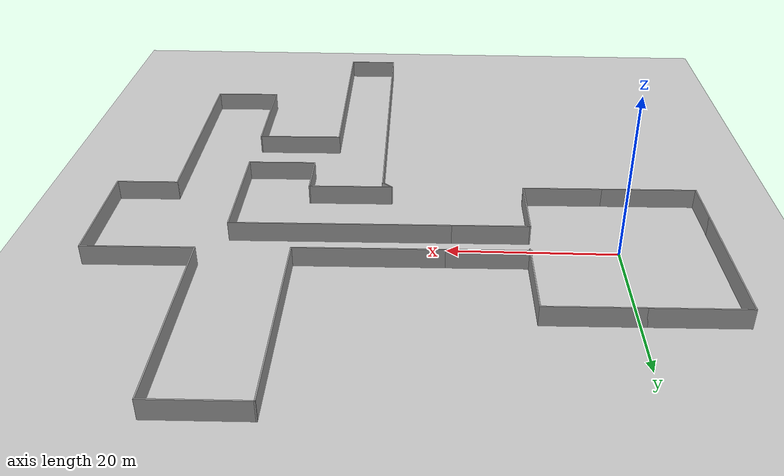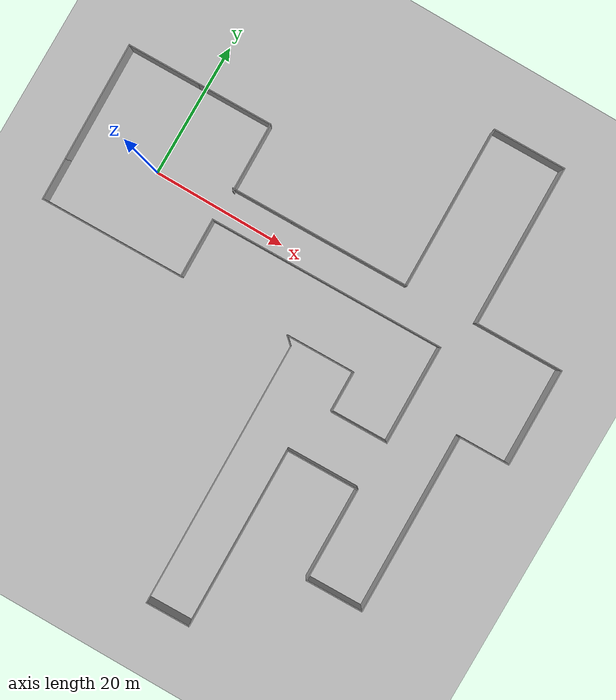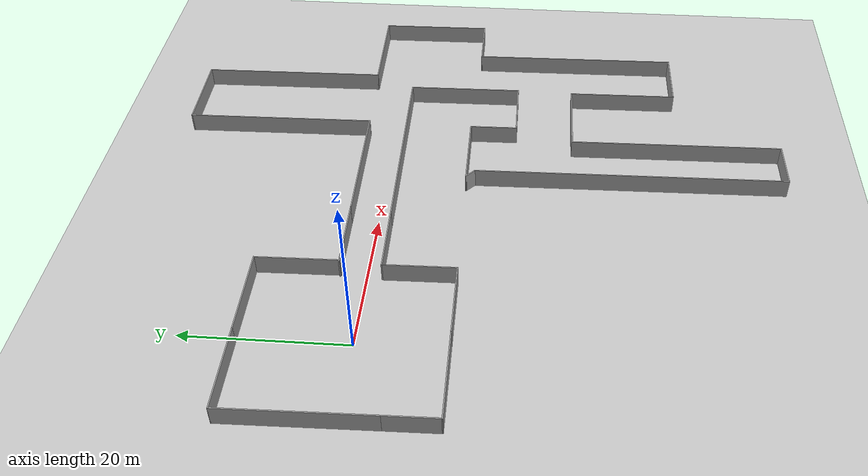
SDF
<sdf version="1.6">
 <world name="default">
  <light name="sun" type="directional">
   <pose>0 0 10 0 -0 0</pose>
   <diffuse>0.8 0.8 0.8 1</diffuse>
   <specular>0.2 0.2 0.2 1</specular>
   <attenuation>
    <range>1000</range>
    <constant>0.9</constant>
    <linear>0.01</linear>
    <quadratic>0.001</quadratic>
   </attenuation>
   <direction>-0.5 0.1 -0.9</direction>
  </light>
  <model name="ground_plane">
   <static>1</static>
   <link name="link">
    <collision name="collision">
     <geometry><plane><normal>0 0 1</normal><size>100 100</size></plane></geometry>
     <surface>
      <contact><collide_bitmask>65535</collide_bitmask></contact>
      <friction><ode><mu>100</mu><mu2>50</mu2></ode></friction>
     </surface>
    </collision>
    <visual name="visual">
     <cast_shadows>0</cast_shadows>
     <geometry><plane><normal>0 0 1</normal><size>100 100</size></plane></geometry>
     <material>
      <script><uri>file://media/materials/scripts/gazebo.material</uri><name>Gazebo/Grey</name></script>
     </material>
    </visual>
   </link>
  </model>
  <gravity>0 0 -9.8</gravity>
  <magnetic_field>6e-06 2.3e-05 -4.2e-05</magnetic_field>
  <atmosphere type="adiabatic"/>
  <physics name="default_physics" default="0" type="ode">
   <max_step_size>0.001</max_step_size>
   <real_time_factor>1</real_time_factor>
   <real_time_update_rate>1000</real_time_update_rate>
  </physics>
  <scene><ambient>0.4 0.4 0.4 1</ambient><background>0.7 0.7 0.7 1</background><shadows>1</shadows></scene>
  <audio><device>default</device></audio>
  <spherical_coordinates>
   <surface_model>EARTH_WGS84</surface_model>
   <latitude_deg>0</latitude_deg>
   <longitude_deg>0</longitude_deg>
   <elevation>0</elevation>
   <heading_deg>0</heading_deg>
  </spherical_coordinates>
  <model name="mycave">
   <pose>25.3756 -11.725 0 0 0 -1.55411</pose>
   <link name="Wall_1">
    <collision name="Wall_1_Collision">
     <geometry><box><size>11 0.15 2.5</size></box></geometry>
     <pose>0 0 1.25 0 -0 0</pose>
    </collision>
    <visual name="Wall_1_Visual">
     <pose>0 0 1.25 0 -0 0</pose>
     <geometry><box><size>11 0.15 2.5</size></box></geometry>
     <material>
      <script><uri>file://media/materials/scripts/gazebo.material</uri><name>Gazebo/Grey</name></script>
      <ambient>1 1 1 1</ambient>
     </material>
     <meta><layer>0</layer></meta>
    </visual>
    <pose>-25.2512 -30.9535 0 0 -0 -1.5708</pose>
   </link>
   <link name="Wall_10">
    <collision name="Wall_10_Collision">
     <geometry><box><size>9 0.15 2.5</size></box></geometry>
     <pose>0 0 1.25 0 -0 0</pose>
    </collision>
    <visual name="Wall_10_Visual">
     <pose>0 0 1.25 0 -0 0</pose>
     <geometry><box><size>9 0.15 2.5</size></box></geometry>
     <material>
      <script><uri>file://media/materials/scripts/gazebo.material</uri><name>Gazebo/Grey</name></script>
      <ambient>1 1 1 1</ambient>
     </material>
     <meta><layer>0</layer></meta>
    </visual>
    <pose>-5.72623 -14.9285 0 0 -0 3.14159</pose>
   </link>
   <link name="Wall_11">
    <collision name="Wall_11_Collision">
     <geometry><box><size>9.25 0.15 2.5</size></box></geometry>
     <pose>0 0 1.25 0 -0 0</pose>
    </collision>
    <visual name="Wall_11_Visual">
     <pose>0 0 1.25 0 -0 0</pose>
     <geometry><box><size>9.25 0.15 2.5</size></box></geometry>
     <material>
      <script><uri>file://media/materials/scripts/gazebo.material</uri><name>Gazebo/Grey</name></script>
      <ambient>1 1 1 1</ambient>
     </material>
     <meta><layer>0</layer></meta>
    </visual>
    <pose>-10.1512 -10.3785 0 0 -0 1.5708</pose>
   </link>
   <link name="Wall_13">
    <collision name="Wall_13_Collision">
     <geometry><box><size>9.75 0.15 2.5</size></box></geometry>
     <pose>0 0 1.25 0 -0 0</pose>
    </collision>
    <visual name="Wall_13_Visual">
     <pose>0 0 1.25 0 -0 0</pose>
     <geometry><box><size>9.75 0.15 2.5</size></box></geometry>
     <material>
      <script><uri>file://media/materials/scripts/gazebo.material</uri><name>Gazebo/Grey</name></script>
      <ambient>1 1 1 1</ambient>
     </material>
     <meta><layer>0</layer></meta>
    </visual>
    <pose>-15.1863 -9.81726 0 0 -0 1.5708</pose>
   </link>
   <link name="Wall_15">
    <collision name="Wall_15_Collision">
     <geometry><box><size>18 0.15 2.5</size></box></geometry>
     <pose>0 0 1.25 0 -0 0</pose>
    </collision>
    <visual name="Wall_15_Visual">
     <pose>0 0 1.25 0 -0 0</pose>
     <geometry><box><size>18 0.15 2.5</size></box></geometry>
     <material>
      <script><uri>file://media/materials/scripts/gazebo.material</uri><name>Gazebo/Grey</name></script>
      <ambient>1 1 1 1</ambient>
     </material>
     <meta><layer>0</layer></meta>
    </visual>
    <pose>-15.175 3.50349 0 0 -0 1.5708</pose>
   </link>
   <link name="Wall_16">
    <collision name="Wall_16_Collision">
     <geometry><box><size>24.5 0.15 2.5</size></box></geometry>
     <pose>0 0 1.25 0 -0 0</pose>
    </collision>
    <visual name="Wall_16_Visual">
     <pose>0 0 1.25 0 -0 0</pose>
     <geometry><box><size>24.5 0.15 2.5</size></box></geometry>
     <material>
      <script><uri>file://media/materials/scripts/gazebo.material</uri><name>Gazebo/Grey</name></script>
      <ambient>1 1 1 1</ambient>
     </material>
     <meta><layer>0</layer></meta>
    </visual>
    <pose>-27.35 12.4285 0 0 -0 3.14159</pose>
   </link>
   <link name="Wall_17">
    <collision name="Wall_17_Collision">
     <geometry><box><size>11 0.15 2.5</size></box></geometry>
     <pose>0 0 1.25 0 -0 0</pose>
    </collision>
    <visual name="Wall_17_Visual">
     <pose>0 0 1.25 0 -0 0</pose>
     <geometry><box><size>11 0.15 2.5</size></box></geometry>
     <material>
      <script><uri>file://media/materials/scripts/gazebo.material</uri><name>Gazebo/Grey</name></script>
      <ambient>1 1 1 1</ambient>
     </material>
     <meta><layer>0</layer></meta>
    </visual>
    <pose>-39.525 17.8535 0 0 -0 1.5708</pose>
   </link>
   <link name="Wall_18">
    <collision name="Wall_18_Collision">
     <geometry><box><size>24.25 0.15 2.5</size></box></geometry>
     <pose>0 0 1.25 0 -0 0</pose>
    </collision>
    <visual name="Wall_18_Visual">
     <pose>0 0 1.25 0 -0 0</pose>
     <geometry><box><size>24.25 0.15 2.5</size></box></geometry>
     <material>
      <script><uri>file://media/materials/scripts/gazebo.material</uri><name>Gazebo/Grey</name></script>
      <ambient>1 1 1 1</ambient>
     </material>
     <meta><layer>0</layer></meta>
    </visual>
    <pose>-27.475 23.2785 0 0 -0 0</pose>
   </link>
   <link name="Wall_19">
    <collision name="Wall_19_Collision">
     <geometry><box><size>13.25 0.15 2.5</size></box></geometry>
     <pose>0 0 1.25 0 -0 0</pose>
    </collision>
    <visual name="Wall_19_Visual">
     <pose>0 0 1.25 0 -0 0</pose>
     <geometry><box><size>13.25 0.15 2.5</size></box></geometry>
     <material>
      <script><uri>file://media/materials/scripts/gazebo.material</uri><name>Gazebo/Grey</name></script>
      <ambient>1 1 1 1</ambient>
     </material>
     <meta><layer>0</layer></meta>
    </visual>
    <pose>-15.425 29.8285 0 0 -0 1.5708</pose>
   </link>
   <link name="Wall_2">
    <collision name="Wall_2_Collision">
     <geometry><box><size>17.75 0.15 2.5</size></box></geometry>
     <pose>0 0 1.25 0 -0 0</pose>
    </collision>
    <visual name="Wall_2_Visual">
     <pose>0 0 1.25 0 -0 0</pose>
     <geometry><box><size>17.75 0.15 2.5</size></box></geometry>
     <material>
      <script><uri>file://media/materials/scripts/gazebo.material</uri><name>Gazebo/Grey</name></script>
      <ambient>1 1 1 1</ambient>
     </material>
     <meta><layer>0</layer></meta>
    </visual>
    <pose>-16.4512 -36.3785 0 0 -0 0</pose>
   </link>
   <link name="Wall_20">
    <collision name="Wall_20_Collision">
     <geometry><box><size>14.75 0.15 2.5</size></box></geometry>
     <pose>0 0 1.25 0 -0 0</pose>
    </collision>
    <visual name="Wall_20_Visual">
     <pose>0 0 1.25 0 -0 0</pose>
     <geometry><box><size>14.75 0.15 2.5</size></box></geometry>
     <material>
      <script><uri>file://media/materials/scripts/gazebo.material</uri><name>Gazebo/Grey</name></script>
      <ambient>1 1 1 1</ambient>
     </material>
     <meta><layer>0</layer></meta>
    </visual>
    <pose>-8.125 36.3785 0 0 -0 0</pose>
   </link>
   <link name="Wall_21">
    <collision name="Wall_21_Collision">
     <geometry><box><size>7.75 0.15 2.5</size></box></geometry>
     <pose>0 0 1.25 0 -0 0</pose>
    </collision>
    <visual name="Wall_21_Visual">
     <pose>0 0 1.25 0 -0 0</pose>
     <geometry><box><size>7.75 0.15 2.5</size></box></geometry>
     <material>
      <script><uri>file://media/materials/scripts/gazebo.material</uri><name>Gazebo/Grey</name></script>
      <ambient>1 1 1 1</ambient>
     </material>
     <meta><layer>0</layer></meta>
    </visual>
    <pose>-0.825001 32.5785 0 0 -0 -1.5708</pose>
   </link>
   <link name="Wall_22">
    <collision name="Wall_22_Collision">
     <geometry><box><size>27.25 0.15 2.5</size></box></geometry>
     <pose>0 0 1.25 0 -0 0</pose>
    </collision>
    <visual name="Wall_22_Visual">
     <pose>0 0 1.25 0 -0 0</pose>
     <geometry><box><size>27.25 0.15 2.5</size></box></geometry>
     <material>
      <script><uri>file://media/materials/scripts/gazebo.material</uri><name>Gazebo/Grey</name></script>
      <ambient>1 1 1 1</ambient>
     </material>
     <meta><layer>0</layer></meta>
    </visual>
    <pose>12.725 28.7785 0 0 -0 0</pose>
   </link>
   <link name="Wall_23">
    <collision name="Wall_23_Collision">
     <geometry><box><size>8.75 0.15 2.5</size></box></geometry>
     <pose>0 0 1.25 0 -0 0</pose>
    </collision>
    <visual name="Wall_23_Visual">
     <pose>0 0 1.25 0 -0 0</pose>
     <geometry><box><size>8.75 0.15 2.5</size></box></geometry>
     <material>
      <script><uri>file://media/materials/scripts/gazebo.material</uri><name>Gazebo/Grey</name></script>
      <ambient>1 1 1 1</ambient>
     </material>
     <meta><layer>0</layer></meta>
    </visual>
    <pose>26.275 24.4785 0 0 -0 -1.5708</pose>
   </link>
   <link name="Wall_24">
    <collision name="Wall_24_Collision">
     <geometry><box><size>14.25 0.15 2.5</size></box></geometry>
     <pose>0 0 1.25 0 -0 0</pose>
    </collision>
    <visual name="Wall_24_Visual">
     <pose>0 0 1.25 0 -0 0</pose>
     <geometry><box><size>14.25 0.15 2.5</size></box></geometry>
     <material>
      <script><uri>file://media/materials/scripts/gazebo.material</uri><name>Gazebo/Grey</name></script>
      <ambient>1 1 1 1</ambient>
     </material>
     <meta><layer>0</layer></meta>
    </visual>
    <pose>19.225 20.1785 0 0 -0 3.14159</pose>
   </link>
   <link name="Wall_25">
    <collision name="Wall_25_Collision">
     <geometry><box><size>11 0.15 2.5</size></box></geometry>
     <pose>0 0 1.25 0 -0 0</pose>
    </collision>
    <visual name="Wall_25_Visual">
     <pose>0 0 1.25 0 -0 0</pose>
     <geometry><box><size>11 0.15 2.5</size></box></geometry>
     <material>
      <script><uri>file://media/materials/scripts/gazebo.material</uri><name>Gazebo/Grey</name></script>
      <ambient>1 1 1 1</ambient>
     </material>
     <meta><layer>0</layer></meta>
    </visual>
    <pose>12.175 14.7535 0 0 -0 -1.5708</pose>
   </link>
   <link name="Wall_26">
    <collision name="Wall_26_Collision">
     <geometry><box><size>27.5 0.15 2.5</size></box></geometry>
     <pose>0 0 1.25 0 -0 0</pose>
    </collision>
    <visual name="Wall_26_Visual">
     <pose>0 0 1.25 0 -0 0</pose>
     <geometry><box><size>27.5 0.15 2.5</size></box></geometry>
     <material>
      <script><uri>file://media/materials/scripts/gazebo.material</uri><name>Gazebo/Grey</name></script>
      <ambient>1 1 1 1</ambient>
     </material>
     <meta><layer>0</layer></meta>
    </visual>
    <pose>25.85 9.32849 0 0 -0 0</pose>
   </link>
   <link name="Wall_27">
    <collision name="Wall_27_Collision">
     <geometry><box><size>6.75 0.15 2.5</size></box></geometry>
     <pose>0 0 1.25 0 -0 0</pose>
    </collision>
    <visual name="Wall_27_Visual">
     <pose>0 0 1.25 0 -0 0</pose>
     <geometry><box><size>6.75 0.15 2.5</size></box></geometry>
     <material>
      <script><uri>file://media/materials/scripts/gazebo.material</uri><name>Gazebo/Grey</name></script>
      <ambient>1 1 1 1</ambient>
     </material>
     <meta><layer>0</layer></meta>
    </visual>
    <pose>39.525 6.02849 0 0 -0 -1.5708</pose>
   </link>
   <link name="Wall_28">
    <collision name="Wall_28_Collision">
     <geometry><box><size>40 0.15 2.5</size></box></geometry>
     <pose>0 0 1.25 0 -0 0</pose>
    </collision>
    <visual name="Wall_28_Visual">
     <pose>0 0 1.25 0 -0 0</pose>
     <geometry><box><size>40 0.15 2.5</size></box></geometry>
     <material>
      <script><uri>file://media/materials/scripts/gazebo.material</uri><name>Gazebo/Grey</name></script>
      <ambient>1 1 1 1</ambient>
     </material>
     <meta><layer>0</layer></meta>
    </visual>
    <pose>19.6 2.72849 0 0 -0 3.14159</pose>
   </link>
   <link name="Wall_3">
    <collision name="Wall_3_Collision">
     <geometry><box><size>6.5 0.15 2.5</size></box></geometry>
     <pose>0 0 1.25 0 -0 0</pose>
    </collision>
    <visual name="Wall_3_Visual">
     <pose>0 0 1.25 0 -0 0</pose>
     <geometry><box><size>6.5 0.15 2.5</size></box></geometry>
     <material>
      <script><uri>file://media/materials/scripts/gazebo.material</uri><name>Gazebo/Grey</name></script>
      <ambient>1 1 1 1</ambient>
     </material>
     <meta><layer>0</layer></meta>
    </visual>
    <pose>-4.47623 -36.3785 0 0 -0 0</pose>
   </link>
   <link name="Wall_30">
    <collision name="Wall_30_Collision">
     <geometry><box><size>26.5 0.15 2.5</size></box></geometry>
     <pose>0 0 1.25 0 -0 0</pose>
    </collision>
    <visual name="Wall_30_Visual">
     <pose>0 0 1.25 0 -0 0</pose>
     <geometry><box><size>26.5 0.15 2.5</size></box></geometry>
     <material>
      <script><uri>file://media/materials/scripts/gazebo.material</uri><name>Gazebo/Grey</name></script>
      <ambient>1 1 1 1</ambient>
     </material>
     <meta><layer>0</layer></meta>
    </visual>
    <pose>-10.1512 7.34651 0 0 -0 1.5708</pose>
   </link>
   <link name="Wall_31">
    <collision name="Wall_31_Collision">
     <geometry><box><size>15 0.15 2.5</size></box></geometry>
     <pose>0 0 1.25 0 -0 0</pose>
    </collision>
    <visual name="Wall_31_Visual">
     <pose>0 0 1.25 0 -0 0</pose>
     <geometry><box><size>15 0.15 2.5</size></box></geometry>
     <material>
      <script><uri>file://media/materials/scripts/gazebo.material</uri><name>Gazebo/Grey</name></script>
      <ambient>1 1 1 1</ambient>
     </material>
     <meta><layer>0</layer></meta>
    </visual>
    <pose>-2.72622 20.5215 0 0 -0 0</pose>
   </link>
   <link name="Wall_32">
    <collision name="Wall_32_Collision">
     <geometry><box><size>8.75 0.15 2.5</size></box></geometry>
     <pose>0 0 1.25 0 -0 0</pose>
    </collision>
    <visual name="Wall_32_Visual">
     <pose>0 0 1.25 0 -0 0</pose>
     <geometry><box><size>8.75 0.15 2.5</size></box></geometry>
     <material>
      <script><uri>file://media/materials/scripts/gazebo.material</uri><name>Gazebo/Grey</name></script>
      <ambient>1 1 1 1</ambient>
     </material>
     <meta><layer>0</layer></meta>
    </visual>
    <pose>4.69878 16.2215 0 0 -0 -1.5708</pose>
   </link>
   <link name="Wall_33">
    <collision name="Wall_33_Collision">
     <geometry><box><size>6.25 0.15 2.5</size></box></geometry>
     <pose>0 0 1.25 0 -0 0</pose>
    </collision>
    <visual name="Wall_33_Visual">
     <pose>0 0 1.25 0 -0 0</pose>
     <geometry><box><size>6.25 0.15 2.5</size></box></geometry>
     <material>
      <script><uri>file://media/materials/scripts/gazebo.material</uri><name>Gazebo/Grey</name></script>
      <ambient>1 1 1 1</ambient>
     </material>
     <meta><layer>0</layer></meta>
    </visual>
    <pose>1.64877 11.9215 0 0 -0 3.14159</pose>
   </link>
   <link name="Wall_34">
    <collision name="Wall_34_Collision">
     <geometry><box><size>10.5 0.15 2.5</size></box></geometry>
     <pose>0 0 1.25 0 -0 0</pose>
    </collision>
    <visual name="Wall_34_Visual">
     <pose>0 0 1.25 0 -0 0</pose>
     <geometry><box><size>10.5 0.15 2.5</size></box></geometry>
     <material>
      <script><uri>file://media/materials/scripts/gazebo.material</uri><name>Gazebo/Grey</name></script>
      <ambient>1 1 1 1</ambient>
     </material>
     <meta><layer>0</layer></meta>
    </visual>
    <pose>-1.40122 6.74651 0 0 -0 -1.5708</pose>
   </link>
   <link name="Wall_35">
    <collision name="Wall_35_Collision">
     <geometry><box><size>1.73014 0.15 2.5</size></box></geometry>
     <pose>0 0 1.25 0 -0 0</pose>
    </collision>
    <visual name="Wall_35_Visual">
     <pose>0 0 1.25 0 -0 0</pose>
     <geometry><box><size>1.73014 0.15 2.5</size></box></geometry>
     <material>
      <script><uri>file://media/materials/scripts/gazebo.material</uri><name>Gazebo/Grey</name></script>
      <ambient>1 1 1 1</ambient>
     </material>
     <meta><layer>0</layer></meta>
    </visual>
    <pose>-0.863113 2.15 0 0 -0 0.821542</pose>
   </link>
   <link name="Wall_4">
    <collision name="Wall_4_Collision">
     <geometry><box><size>11.75 0.15 2.5</size></box></geometry>
     <pose>0 0 1.25 0 -0 0</pose>
    </collision>
    <visual name="Wall_4_Visual">
     <pose>0 0 1.25 0 -0 0</pose>
     <geometry><box><size>11.75 0.15 2.5</size></box></geometry>
     <material>
      <script><uri>file://media/materials/scripts/gazebo.material</uri><name>Gazebo/Grey</name></script>
      <ambient>1 1 1 1</ambient>
     </material>
     <meta><layer>0</layer></meta>
    </visual>
    <pose>-1.30123 -30.5785 0 0 -0 1.5708</pose>
   </link>
   <link name="Wall_5">
    <collision name="Wall_5_Collision">
     <geometry><box><size>10 0.15 2.5</size></box></geometry>
     <pose>0 0 1.25 0 -0 0</pose>
    </collision>
    <visual name="Wall_5_Visual">
     <pose>0 0 1.25 0 -0 0</pose>
     <geometry><box><size>10 0.15 2.5</size></box></geometry>
     <material>
      <script><uri>file://media/materials/scripts/gazebo.material</uri><name>Gazebo/Grey</name></script>
      <ambient>1 1 1 1</ambient>
     </material>
     <meta><layer>0</layer></meta>
    </visual>
    <pose>-1.30123 -19.8535 0 0 -0 1.5708</pose>
   </link>
   <link name="Wall_7">
    <collision name="Wall_7_Collision">
     <geometry><box><size>11.25 0.15 2.5</size></box></geometry>
     <pose>0 0 1.25 0 -0 0</pose>
    </collision>
    <visual name="Wall_7_Visual">
     <pose>0 0 1.25 0 -0 0</pose>
     <geometry><box><size>11.25 0.15 2.5</size></box></geometry>
     <material>
      <script><uri>file://media/materials/scripts/gazebo.material</uri><name>Gazebo/Grey</name></script>
      <ambient>1 1 1 1</ambient>
     </material>
     <meta><layer>0</layer></meta>
    </visual>
    <pose>-25.2512 -19.9785 0 0 -0 1.5708</pose>
   </link>
   <link name="Wall_8">
    <collision name="Wall_8_Collision">
     <geometry><box><size>10.5 0.15 2.5</size></box></geometry>
     <pose>0 0 1.25 0 -0 0</pose>
    </collision>
    <visual name="Wall_8_Visual">
     <pose>0 0 1.25 0 -0 0</pose>
     <geometry><box><size>10.5 0.15 2.5</size></box></geometry>
     <material>
      <script><uri>file://media/materials/scripts/gazebo.material</uri><name>Gazebo/Grey</name></script>
      <ambient>1 1 1 1</ambient>
     </material>
     <meta><layer>0</layer></meta>
    </visual>
    <pose>-20.0762 -14.4285 0 0 -0 0</pose>
   </link>
   <static>1</static>
  </model>
 </world>
</sdf>
